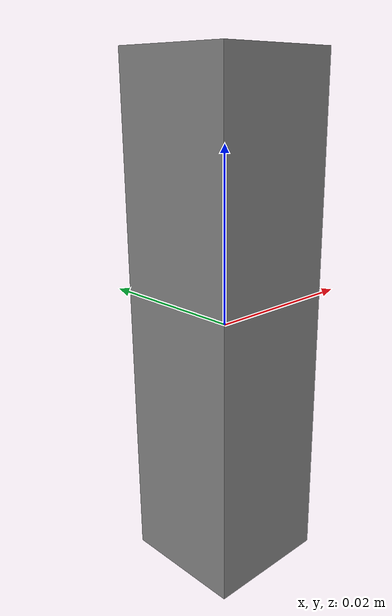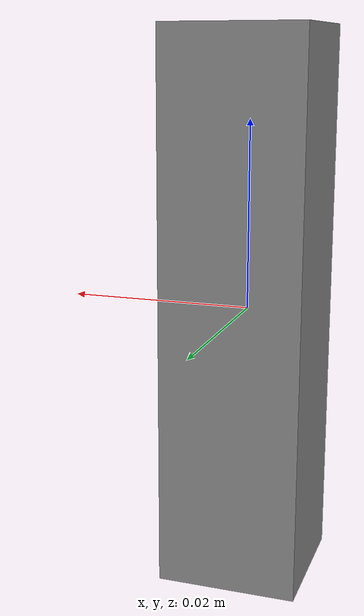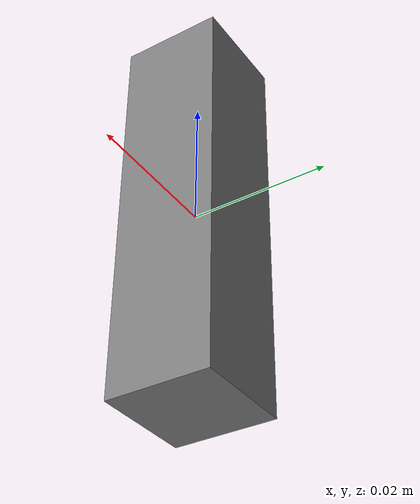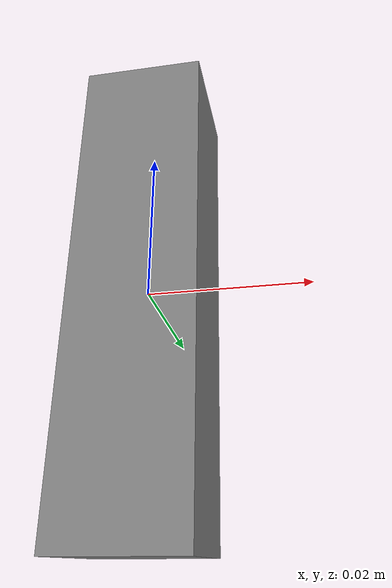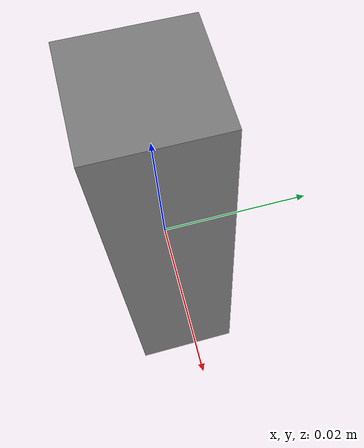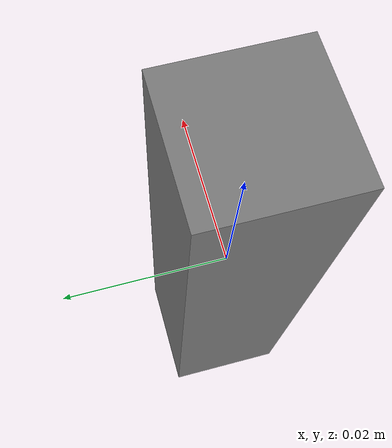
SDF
<?xml version="1.0"?>
<sdf version="1.6">
  <model name="pillar">
    <static>true</static>
    <link name="link">
      <collision name="collision"><geometry><box><size>0.015 0.015 0.059</size></box></geometry></collision>
      <visual name="visual">
        <geometry><box><size>0.015 0.015 0.059</size></box></geometry>
        <material><ambient>0.5 0.5 0.5 1</ambient><diffuse>0.5 0.5 0.5 1</diffuse></material>
      </visual>
    </link>
  </model>
</sdf>
